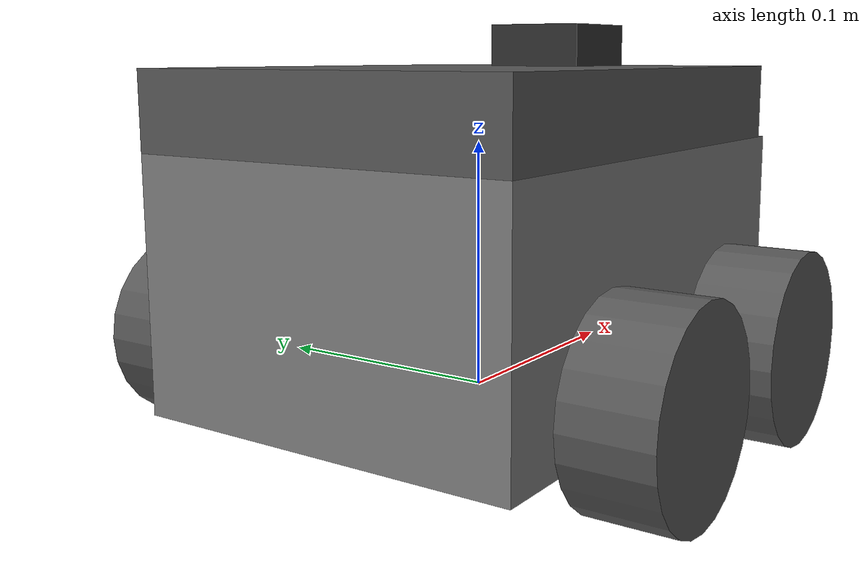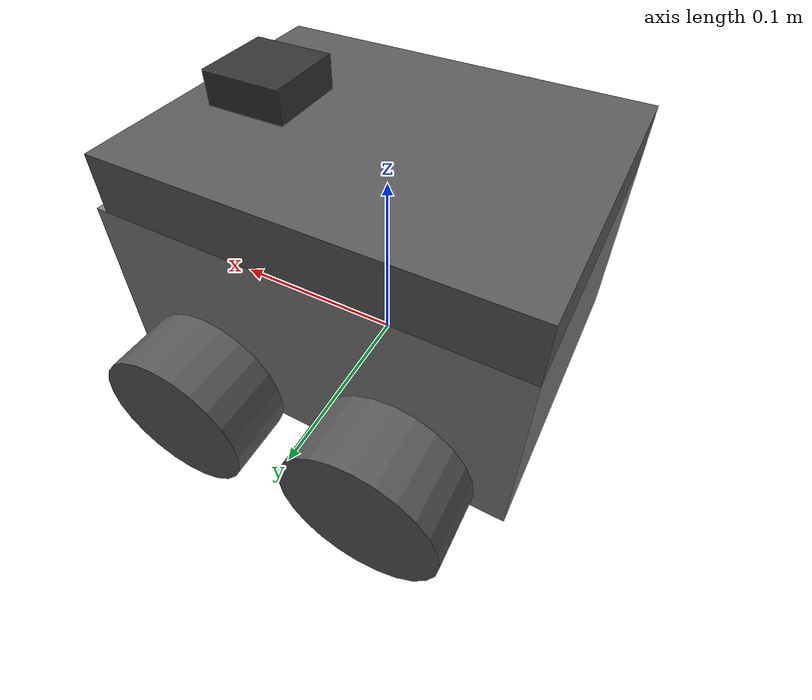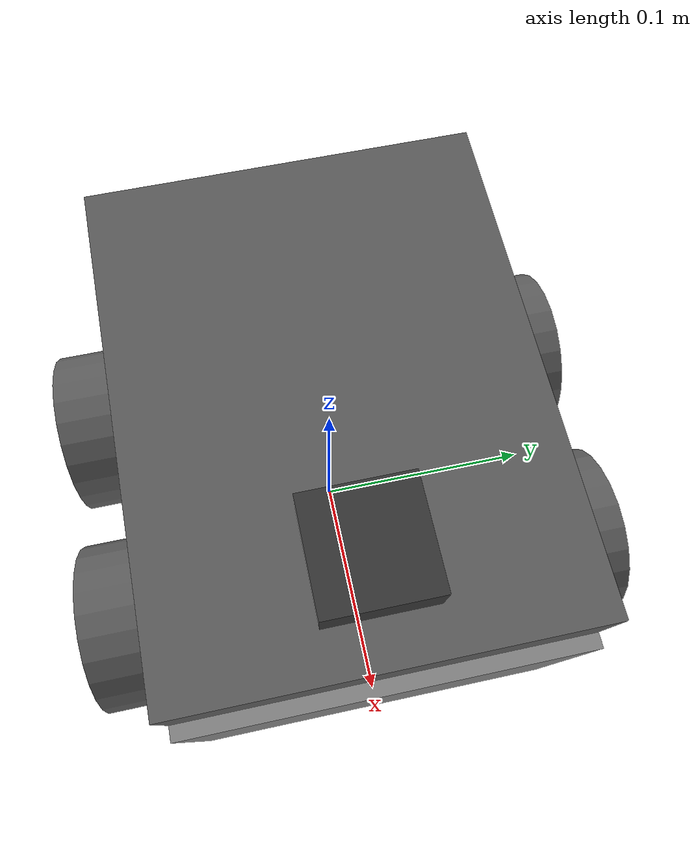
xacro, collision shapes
<?xml version="1.0" encoding="utf-8"?>
<robot name="akros2_mecanum" xmlns:xacro="http://ros.org/wiki/xacro">
<xacro:include filename="$(find akros2_description)/urdf/akros2_mecanum/akros2_mecanum.common.xacro"/>
<xacro:include filename="$(find akros2_description)/urdf/akros2_mecanum/akros2_mecanum.control.xacro"/>
<xacro:include filename="$(find akros2_description)/urdf/akros2_mecanum/akros2_mecanum.gazebo.xacro"/>

<xacro:arg name="mesh_path" default="package://akros2_description/meshes/akros2_mecanum/" /> <!-- HTTPS URL also works here -->
<xacro:arg name="unity" default="false" />
<xacro:property name="mesh_path" value="$(arg mesh_path)" />

<xacro:if value="$(arg unity)">
  <xacro:property name="mesh_path" value="" />
</xacro:if>

<!-- **** LINKS **** -->

<!-- BASE_LINK -->
<link name="base_link">
  <visual>
    <origin xyz="0 0 0" rpy="0 0 0" />
    <geometry>
      <mesh filename="${mesh_path}base_module.dae" />
    </geometry>
   <material name="BaseLinkColor"/>
  </visual>
  <collision>
    <origin xyz="${base_offset_x/2} 0 ${base_height/2}" rpy="0 0 0" />
    <geometry>
      <box size="${base_length} ${base_width} ${base_height}"/>
    </geometry>
  </collision>
</link>

<!-- BASE_LINK_INERTIAL (WORKAROUND FOR KDL WHICH DOES NOT ACCEPT BASE_LINK WITH INERTIA) -->
<link name="base_link_inertial">
  <inertial>
    <origin xyz="0 0 0" rpy="0 0 0" />
    <mass value="${base_mass}"/>
    <xacro:box_inertia m="${base_mass}" x="${base_length}" y="${base_width}" z="${base_height}"/>
  </inertial>
</link>

<!-- BASE_FOOTPRINT -->
<link name="base_footprint"/>

<!-- NAV_LINK -->
<link name="nav_link">
  <inertial>
    <mass value="${nav_mass}" />
    <xacro:box_inertia m="${nav_mass}" x="${nav_length}" y="${nav_width}" z="${nav_height}"/>
  </inertial>
  <visual>
    <origin xyz="0 0 ${nav_offset_z}" rpy="0 0 0" />
    <geometry>
      <mesh filename="${mesh_path}navigation_module.dae" />
    </geometry>
    <material name="WheelsNavColor"/>
  </visual>
  <collision>
    <origin xyz="0 0 ${nav_height/2}" rpy="0 0 0" />
    <geometry>
      <box size="${nav_length} ${nav_width} ${nav_height}"/>
    </geometry>
  </collision>
</link>

<!-- LD06 LASER_LINK -->
<link name="laser_link">
  <inertial>
    <origin xyz="0 0 0" rpy="0 0 0" />
    <mass value="${laser_mass}" />
    <xacro:box_inertia m="${laser_mass}" x="${laser_length}" y="${laser_width}" z="${laser_height}"/>
  </inertial>
  <visual>
    <origin xyz="0 0 0" rpy="0 0 ${minus_pi_by_two}" />
    <geometry>
      <mesh filename="${mesh_path}ld06.dae" />
    </geometry>
    <material name="LaserColor"/>
  </visual>
  <collision>
    <origin xyz="0 0 ${laser_height/2}" rpy="0 0 ${minus_pi_by_two}" />
    <geometry>
      <box size="${laser_length} ${laser_width} ${laser_height}"/>
    </geometry>
  </collision>
</link>

<!-- LASER_FRAME -->
<link name="laser_frame"/>

<!-- MPU9250 IMU_LINK -->
<link name="imu_link"/>

<!-- IMU_FRAME -->
<link name="imu_frame"/>

<!-- WHEEL LEFT FRONT -->
<link name="wheel_lf">
  <inertial>
    <mass value="${wheel_mass}"/>
    <xacro:cylinder_inertia m="${wheel_mass}" r="${wheel_radius}" h="${wheel_thickness}"/>
  </inertial>
  <visual>
    <origin xyz="0 0 0" rpy="0 0 0" />
    <geometry>
      <mesh filename="${mesh_path}wheel_lf.dae" />
    </geometry>
    <material name="WheelsNavColor"/>
  </visual>
  <collision>
    <origin xyz="0 ${wheel_thickness/2} 0" rpy="${pi_by_two} 0 0" />
    <geometry>
      <cylinder length="${wheel_thickness}" radius="${wheel_radius}"/>
    </geometry>
  </collision>
</link>

<!-- WHEEL LEFT BACK -->
<link name="wheel_lb">
  <inertial>
    <mass value="${wheel_mass}"/>
    <xacro:cylinder_inertia m="${wheel_mass}" r="${wheel_radius}" h="${wheel_thickness}"/>
  </inertial>
  <visual>
    <origin xyz="0 0 0" rpy="0 0 0" />
    <geometry>
      <mesh filename="${mesh_path}wheel_lb.dae" />
    </geometry>
    <material name="WheelsNavColor"/>
  </visual>
  <collision>
    <origin xyz="0 ${wheel_thickness/2} 0" rpy="${pi_by_two} 0 0" />
    <geometry>
      <cylinder length="${wheel_thickness}" radius="${wheel_radius}"/>
    </geometry>
  </collision>
</link>

<!-- WHEEL RIGHT FRONT -->
<link name="wheel_rf">
  <inertial>
    <mass value="${wheel_mass}"/>
    <xacro:cylinder_inertia m="${wheel_mass}" r="${wheel_radius}" h="${wheel_thickness}"/>
  </inertial>
  <visual>
    <origin xyz="0 0 0" rpy="0 0 0" />
    <geometry>
      <mesh filename="${mesh_path}wheel_rf.dae" />
    </geometry>
    <material name="WheelsNavColor"/>
  </visual>
  <collision>
    <origin xyz="0 ${-1*(wheel_thickness/2)} 0" rpy="${pi_by_two} 0 0" />
    <geometry>
      <cylinder length="${wheel_thickness}" radius="${wheel_radius}"/>
    </geometry>
  </collision>
</link>

<!-- WHEEL RIGHT BACK -->
<link name="wheel_rb">
  <inertial>
    <mass value="${wheel_mass}"/>
    <xacro:cylinder_inertia m="${wheel_mass}" r="${wheel_radius}" h="${wheel_thickness}"/>
  </inertial>
  <visual>
    <origin xyz="0 0 0" rpy="0 0 0" />
    <geometry>
      <mesh filename="${mesh_path}wheel_rb.dae" />
    </geometry>
    <material name="WheelsNavColor"/>
  </visual>
  <collision>
    <origin xyz="0 ${-1*(wheel_thickness/2)} 0" rpy="${pi_by_two} 0 0" />
    <geometry>
      <cylinder length="${wheel_thickness}" radius="${wheel_radius}"/>
    </geometry>
  </collision>
</link>

<!-- **** JOINTS **** -->

<!-- BASE_LINK_INERTIAL TO BASE_LINK -->
<joint name="base_inertial_fixed" type="fixed">
  <parent link="base_link"/>
  <child link="base_link_inertial"/>
  <origin xyz="0 0 0"/>
</joint>

<!-- BASE_FOOTPRINT TO BASE_LINK -->
<joint name="base_footprint_fixed" type="fixed">
  <parent link="base_link"/>
  <child link="base_footprint"/>
  <origin xyz="0 0 ${base_footprint_offset_z}"/>
</joint>

<!-- NAV_LINK TO BASE_LINK -->
<joint name="base_nav_fixed" type="fixed">
  <parent link="base_link"/>
  <child link="nav_link"/>
  <origin xyz="0 0 ${base_height}"/>
  <axis xyz="0 0 0"/>
</joint>

<!-- LASER_LINK TO NAV_LINK -->
<joint name="nav_laser_fixed" type="fixed">
  <parent link="nav_link"/>
  <child link="laser_link"/>
  <origin xyz="${nav_laser_offset_x} 0 ${nav_height/2}"/>
</joint>

<!-- LASER_FRAME TO LASER_LINK -->
<joint name="laser_frame_fixed" type="fixed">
  <parent link="laser_link"/>
  <child link="laser_frame"/>
  <origin xyz="0 0 ${laser_frame_offset_z}"/>
</joint>

<!-- IMU_LINK TO BASE_LINK -->
<joint name="imu_base_fixed" type="fixed">
  <parent link="base_link"/>
  <child link="imu_link"/>
  <origin xyz="${imu_offset_x} 0 ${imu_offset_z}"/>
</joint>

<!-- IMU_FRAME TO IMU_LINK -->
<joint name="imu_frame_fixed" type="fixed">
  <parent link="imu_link"/>
  <child link="imu_frame"/>
  <origin xyz="0 0 0"/>
</joint>

<!-- WHEEL_LF TO BASE_LINK -->
<joint name="joint_lf" type="continuous">
  <parent link="base_link" />
  <child link="wheel_lf" />
  <origin xyz="${joint_offset_x} ${joint_offset_y} ${joint_offset_z}" rpy="0 0 0" />
  <axis xyz="0 1 0" />
</joint>

<!-- WHEEL_LB TO BASE_LINK -->
<joint name="joint_lb" type="continuous">
  <parent link="base_link" />
  <child link="wheel_lb" />
  <origin xyz="${-1*joint_offset_x} ${joint_offset_y} ${joint_offset_z}" rpy="0 0 0" />
  <axis xyz="0 1 0" />
</joint>

<!-- WHEEL_RF TO BASE_LINK -->
<joint name="joint_rf" type="continuous">
  <parent link="base_link" />
  <child link="wheel_rf" />
  <origin xyz="${joint_offset_x} ${-1*joint_offset_y} ${joint_offset_z}" rpy="0 0 0" />
  <axis xyz="0 1 0" />
</joint>

<!-- WHEEL_RB TO BASE_LINK -->
<joint name="joint_rb" type="continuous">
  <parent link="base_link" />
  <child link="wheel_rb" />
  <origin xyz="${-1*joint_offset_x} ${-1*joint_offset_y} ${joint_offset_z}" rpy="0 0 0" />
  <axis xyz="0 1 0" />
</joint>

</robot>

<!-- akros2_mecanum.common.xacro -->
<robot name="mecanum_common" xmlns:xacro="http://ros.org/wiki/xacro">
<!-- All values below are based on CAD model (Fusion 360). 2mm added on each side (4mm total) for length and width (but not height) as padding. -->

<xacro:property name="pi_by_two" value="1.5707963" />
<xacro:property name="minus_pi_by_two" value="-1.5707963" />

<xacro:property name="base_mass" value="2.0" /> <!-- Guesstimate, needs to be measured -->
<xacro:property name="base_length" value="0.21038" /> <!-- Actual length without padding = 0.20638. Change to 0.21038 to include screw heads in collision (without padding). -->
<xacro:property name="base_width" value="0.1585" /> <!-- Actual width without padding = 0.1545 without screw heads. Change to 0.2 to include motor shafts and emergency button (without padding)-->
<xacro:property name="base_height" value="0.099" />
<xacro:property name="base_offset_x" value="0.006" />

<xacro:property name="nav_offset_z" value="-0.099" />
<xacro:property name="nav_mass" value="0.5" /> <!-- Guesstimate, needs to be measured -->
<xacro:property name="nav_length" value="0.2044" /> <!-- Actual length without padding = 0.2004 -->
<xacro:property name="nav_width" value="0.1585" /> <!-- Actual width without padding = 0.1545-->
<xacro:property name="nav_height" value="0.03065" />

<xacro:property name="imu_offset_x" value="0.0562" />
<xacro:property name="imu_offset_z" value="0.094" />

<xacro:property name="laser_mass" value="0.12" />
<xacro:property name="laser_length" value="0.042" /> <!-- Actual length without padding = 0.038 -->
<xacro:property name="laser_width" value="0.0421" /> <!-- Actual width without padding = 0.0381 -->
<xacro:property name="laser_height" value="0.033" />

<xacro:property name="wheel_radius" value="0.0385" /> <!-- Actual radius = 0.0385, CAD radius = 0.036 -->
<xacro:property name="wheel_mass" value="0.075" /> <!-- Guesstimate, needs to be measured -->
<xacro:property name="wheel_thickness" value="0.034" /> <!-- Actual thickness = 0.034, CAD thickness = 0.0315 -->

<xacro:property name="base_footprint_offset_z" value="-0.017877" /> <!-- Actual offset = -0.017877, CAD offset = -0.015377 -->
<xacro:property name="nav_laser_offset_x" value="0.0632" />
<xacro:property name="laser_frame_offset_z" value="0.0255" />

<xacro:property name="joint_offset_x" value="0.0495" />
<xacro:property name="joint_offset_y" value="0.0854225" />
<xacro:property name="joint_offset_z" value="0.021" />

<xacro:macro name="cylinder_inertia" params="m r h">
  <inertia  ixx="${m*(3*r*r+h*h)/12}" ixy = "0" ixz = "0"
            iyy="${m*(3*r*r+h*h)/12}" iyz = "0"
            izz="${m*r*r/2}" />
</xacro:macro>

<xacro:macro name="box_inertia" params="m x y z">
  <inertia  ixx="${m*(y*y+z*z)/12}" ixy = "0" ixz = "0"
            iyy="${m*(x*x+z*z)/12}" iyz = "0"
            izz="${m*(x*x+z*z)/12}" />
</xacro:macro>

<xacro:macro name="sphere_inertia" params="m r">
  <inertia  ixx="${2*m*r*r/5}" ixy = "0" ixz = "0"
            iyy="${2*m*r*r/5}" iyz = "0"
            izz="${2*m*r*r/5}" />
</xacro:macro>

<material name="LaserColor">
    <color rgba="0.2 0.2 0.2 1"/>
</material>

<material name="WheelsNavColor">
    <color rgba="0.35 0.35 0.35 1"/>
</material>

<material name="BaseLinkColor">
    <color rgba="0.5 0.5 0.5 1"/>
</material>

</robot>
